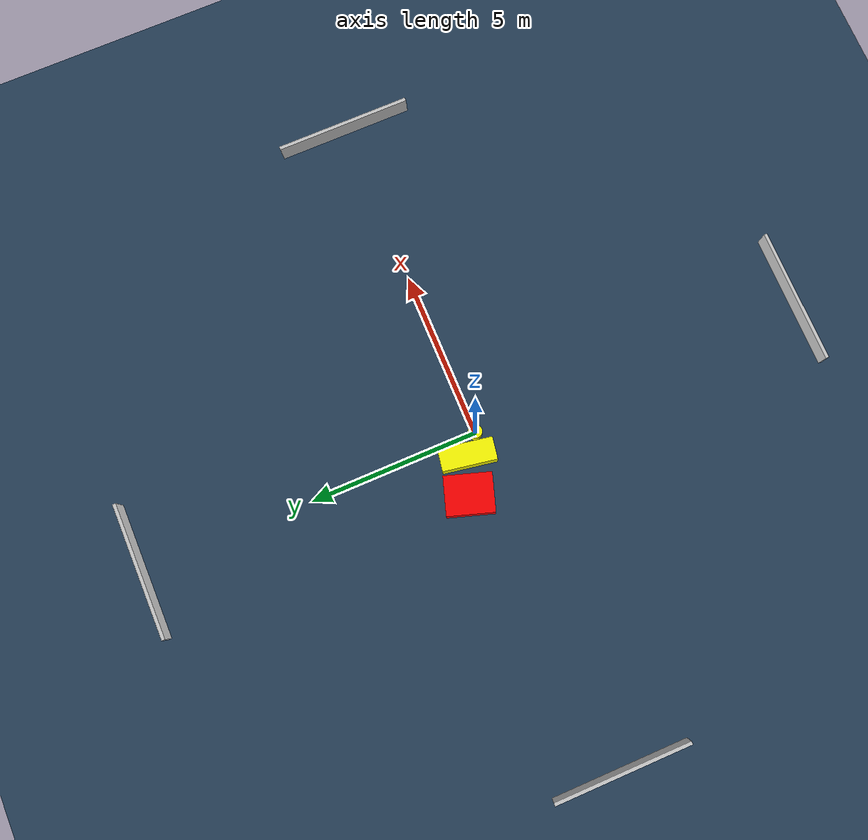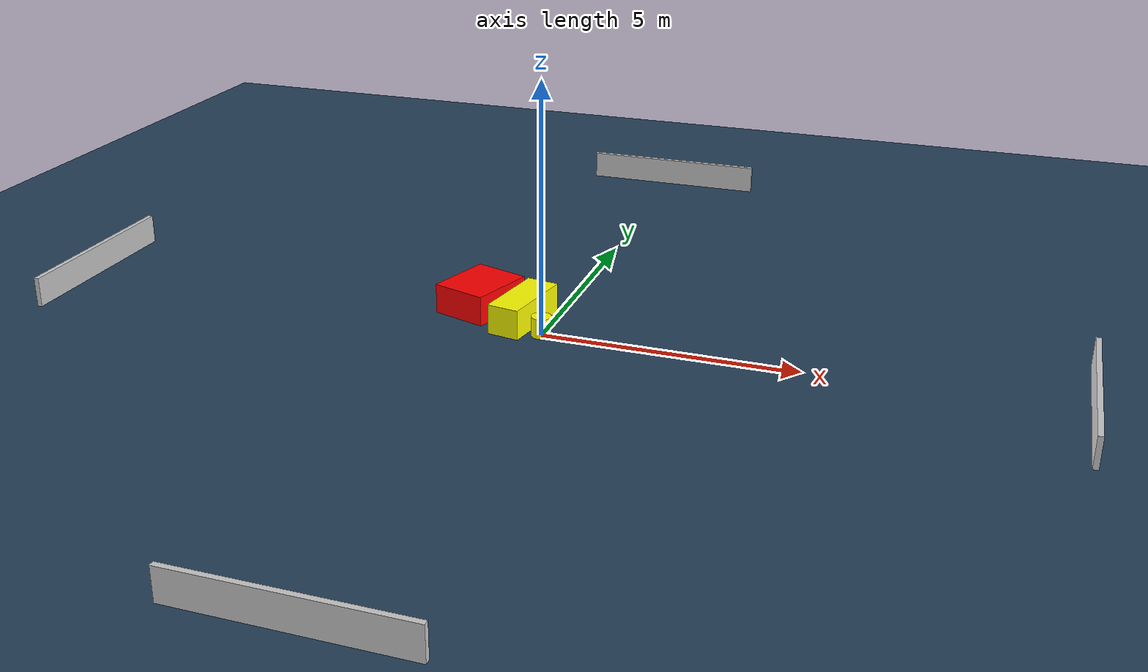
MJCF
<?xml version="1.0" ?>
<mujoco model="generated_environment">
  <option timestep="0.01" integrator="RK4" cone="elliptic"/>
  <default>
    <geom density="1"/>
  </default>
  <asset>
    <texture builtin="gradient" height="3072" name="skybox" rgb1="0.3 0.5 0.7" rgb2="0 0 0" type="skybox" width="512"/>
    <texture builtin="checker" height="300" name="groundplane" rgb1="0.2 0.3 0.4" rgb2="0.1 0.2 0.3" type="2d" width="300"/>
    <material name="groundplane" reflectance="0.2" texrepeat="5 5" texture="groundplane"/>
  </asset>
  <worldbody>
    <light dir="0 0 -1" directional="true" pos="0 0 1.5"/>
    <geom condim="3" friction="0.5 0.005 0.001" material="groundplane" name="floor" pos="0 0 0" size="0 0 0.05" type="plane"/>
    <body name="walls">
      <geom name="wall_1" condim="4" pos="-10.0 0.0 0.3" rgba="0.800000011920929 0.800000011920929 0.800000011920929 1.0" size="0.05 2.0 0.3" type="box"/>
      <geom name="wall_2" condim="4" pos="10.0 0.0 0.3" rgba="0.800000011920929 0.800000011920929 0.800000011920929 1.0" size="0.05 2.0 0.3" type="box"/>
      <geom name="wall_3" condim="4" pos="0.0 -10.0 0.3" rgba="0.800000011920929 0.800000011920929 0.800000011920929 1.0" size="2.0 0.05 0.3" type="box"/>
      <geom name="wall_4" condim="4" pos="0.0 10.0 0.3" rgba="0.800000011920929 0.800000011920929 0.800000011920929 1.0" size="2.0 0.05 0.3" type="box"/>
    </body>
    <body name="robot">
      <joint name="joint_x" type="slide" pos="0 0 0" axis="1 0 0"/>
      <joint name="joint_y" type="slide" pos="0 0 0" axis="0 1 0"/>
      <geom name="robot" type="cylinder" pos="0.0 0.0 0.2" size="0.2 0.2 0.0" mass="5.0" friction="1.0 0.005 0.0001" condim="4" rgba="1.0 1.0 0.0 1.0"/>
    </body>
    <body name="obstacle_1_movable">
      <geom name="obstacle_1_movable" condim="4" pos="-0.540097944166153 0.46578510205183654 0.3" euler="0 0 170.1521714015761" friction="0.0 0.005 0.001" rgba="1.0 1.0 0.0 1.0" size="0.3279858381894637 0.7923589490298 0.3" type="box" mass="0.1"/>
      <joint type="free"/>
    </body>
    <body name="obstacle_2_static">
      <geom name="obstacle_2_static" condim="4" pos="-1.5881131688023118 0.8565875806540242 0.3" euler="0 0 72.17888716534087" friction="0.0 0.005 0.001" rgba="1.0 0.0 0.0 1.0" size="0.6924576989795947 0.5685996353694871 0.3" type="box"/>
    </body>
  </worldbody>
  <actuator>
    <motor name="actuator_x" joint="joint_x" gear="1" ctrlrange="-1 1"/>
    <motor name="actuator_y" joint="joint_y" gear="1" ctrlrange="-1 1"/>
  </actuator>
</mujoco>
